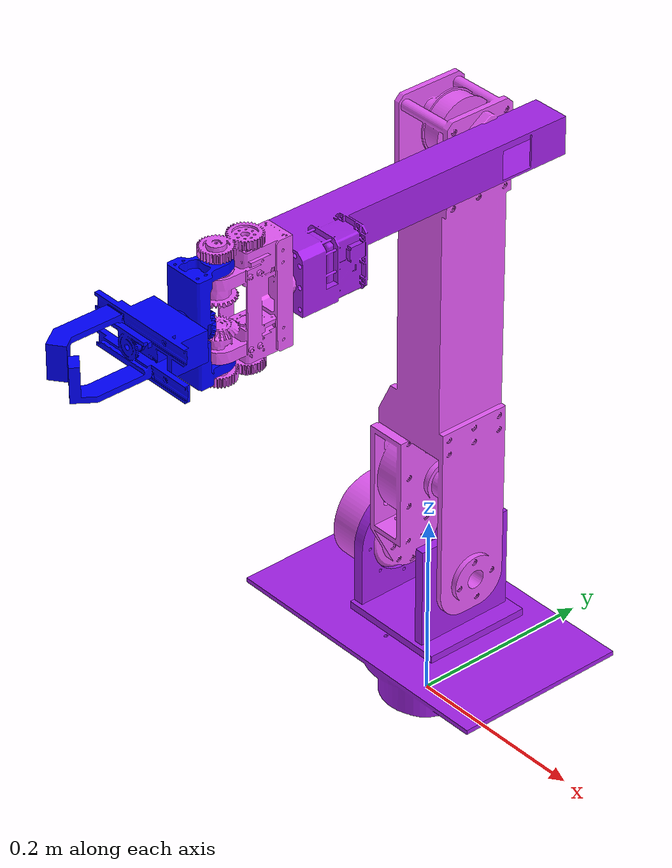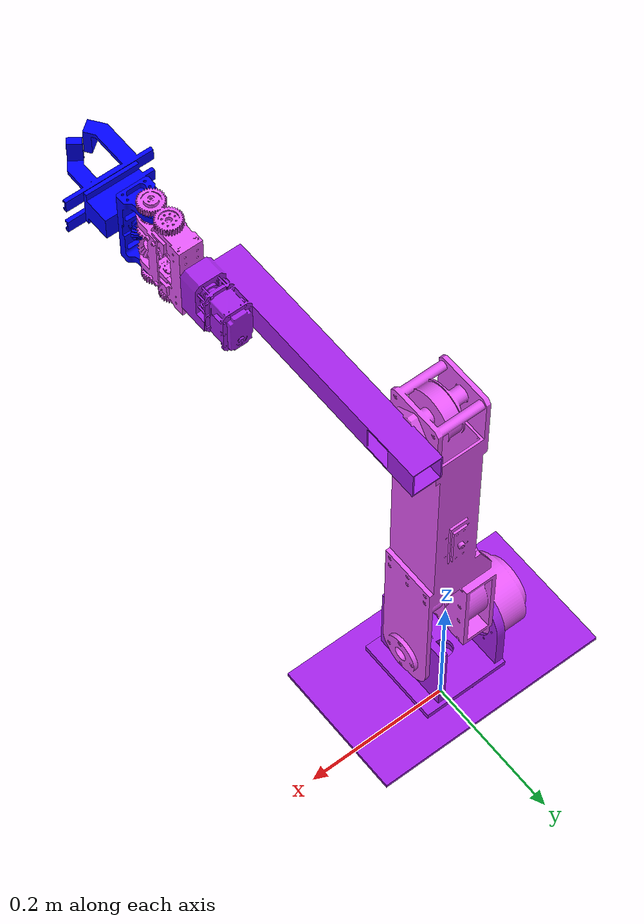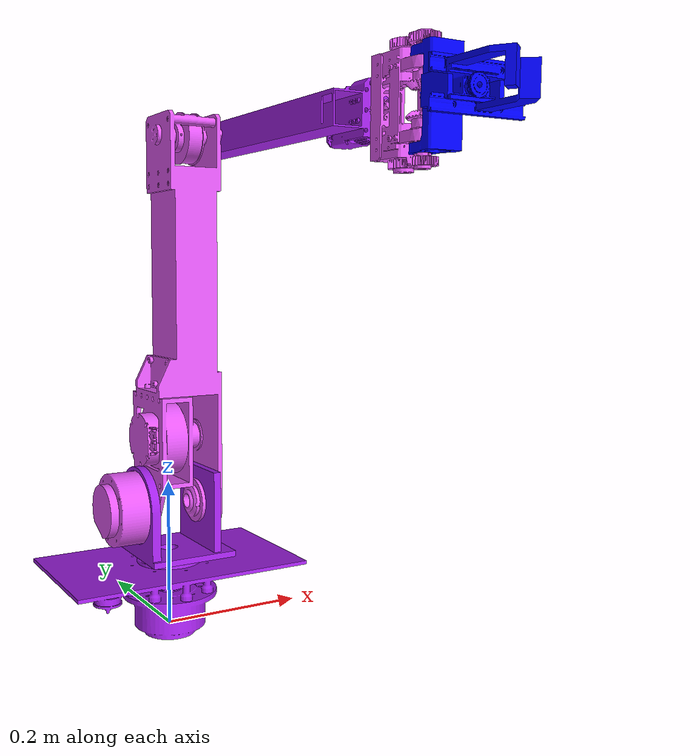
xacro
<?xml version="1.0" ?>
<!-- |    Author:       Klaudia Niedziałkowska                                         | -->
<robot name="six_dof_arm">

  <!-- Base link -->
  <link name="root_link">
    <visual>
      <geometry>
        <mesh filename="package://sirius_description/meshes/manipulators/6DOF/global_roll_assembly.STL" scale="0.001 0.001 0.001"/>
      </geometry>
      <origin xyz="0.0 0.0 0.1" rpy="0.0 0.0 0.0"/>
      <material name="purple">
        <color rgba="0.64 0.13 0.91 1.0"/>
      </material>
    </visual>
    <collision>
      <geometry>
          <mesh filename="package://sirius_description/meshes/manipulators/6DOF/global_roll_assembly.STL" scale="0.001 0.001 0.001"/>
      </geometry>
      <origin xyz="0.0 0.0 0.1" rpy="0.0 0.0 0.0"/>
    </collision>
    <inertial>
      <mass value="0.5"/>
      <inertia ixx="0.0042" ixy="0" ixz="0" iyy="0.0042" iyz="0" izz="0.0025"/>
    </inertial>
  </link>

  <!-- Joints and links -->

  <link name="link_1">
    <visual>
      <geometry>
        <mesh filename="package://sirius_description/meshes/manipulators/6DOF/base_assy.STL" scale="0.001 0.001 0.001"/>
      </geometry>
      <origin xyz="0.0 0.0 0.0" rpy="0.0 0.0 0.0"/>
      <material name="purple">
        <color rgba="0.64 0.13 0.91 1.0"/>
      </material>
    </visual>
    <collision>
      <geometry>
          <mesh filename="package://sirius_description/meshes/manipulators/6DOF/base_assy.STL" scale="0.001 0.001 0.001"/>
      </geometry>
      <origin xyz="0.0 0.0 0.0" rpy="0.0 0.0 0.0"/>
    </collision>
    <inertial>
      <mass value="0.8"/>
      <inertia ixx="0.0034" ixy="0" ixz="0" iyy="0.0034" iyz="0" izz="0.0016"/>
    </inertial>
  </link>

  <joint name="joint_1" type="revolute">
    <parent link="root_link"/>
    <child link="link_1"/>
    <axis xyz="0 0 1"/>
    <limit lower="-3.14" upper="3.14" effort="1000.0" velocity="0.5"/>
    <origin xyz="0 0 0.1" rpy="0 0 0"/>
  </joint>

  <link name="link_2">
    <visual>
      <geometry>
        <mesh filename="package://sirius_description/meshes/manipulators/6DOF/GP1.STL" scale="0.001 0.001 0.001"/>
      </geometry>
      <origin xyz="0 0 0" rpy="0.0 0.0 0.0"/>
      <material name="pink">
        <color rgba="0.902 0.349 0.971 1.0"/>
      </material>
    </visual>
    <collision>
      <geometry>
        <mesh filename="package://sirius_description/meshes/manipulators/6DOF/GP1.STL" scale="0.001 0.001 0.001"/>
      </geometry>
      <origin xyz="0 0 0" rpy="0.0 0.0 0.0"/>
    </collision>
    <inertial>
      <mass value="1.2"/>
      <inertia ixx="0.024" ixy="0" ixz="0" iyy="0.024" iyz="0" izz="0.0024"/>
    </inertial>
  </link>

  <joint name="joint_2" type="revolute">
    <parent link="link_1"/>
    <child link="link_2"/>
    <axis xyz="1 0 0"/>
    <limit lower="-1.58" upper="1.58" effort="1000.0" velocity="0.5"/>
    <origin xyz="0.02727 0.0 0.07" rpy="0 0 0"/>
  </joint>

  <link name="link_3">
    <visual>
      <geometry>
        <mesh filename="package://sirius_description/meshes/manipulators/6DOF/GP2.STL" scale="0.001 0.001 0.001"/>
      </geometry>
      <origin xyz="0 0 0" rpy="0.0 0.0 0.0"/>
      <material name="purple">
        <color rgba="0.64 0.13 0.91 1.0"/>
      </material>
    </visual>
    <collision>
      <geometry>
          <mesh filename="package://sirius_description/meshes/manipulators/6DOF/GP2.STL" scale="0.001 0.001 0.001"/>
      </geometry>
      <origin xyz="0 0 0" rpy="0.0 0.0 0.0"/>
    </collision>
    <inertial>
      <mass value="0.8"/>
      <inertia ixx="0.012" ixy="0" ixz="0" iyy="0.012" iyz="0" izz="0.0016"/>
    </inertial>
  </link>

  <joint name="joint_3" type="revolute">
    <parent link="link_2"/>
    <child link="link_3"/>
    <axis xyz="1 0 0"/>
    <limit lower="-1.58" upper="1.58" effort="1000.0" velocity="0.5"/>
    <origin xyz="0.04573 0 0.495" rpy="1.57079632679 0 0"/>
  </joint>

  <link name="link_4">
    <visual>
      <geometry>
        <mesh filename="package://sirius_description/meshes/manipulators/6DOF/wrist_diff_base.STL" scale="0.001 0.001 0.001"/>
      </geometry>
      <origin xyz="0.0 0.0 0.0" rpy="0.0 0.0 0.0"/>
      <material name="pink">
        <color rgba="0.902 0.349 0.971 1.0"/>
      </material>
    </visual>
    <collision>
      <geometry>
          <mesh filename="package://sirius_description/meshes/manipulators/6DOF/wrist_diff_base.STL" scale="0.001 0.001 0.001"/>
      </geometry>
      <origin xyz="0.0 0.0 0.0" rpy="0.0 0.0 0.0"/>
    </collision>
    <inertial>
      <mass value="0.3"/>
      <inertia ixx="0.0005" ixy="0" ixz="0" iyy="0.0005" iyz="0" izz="0.0003"/>
    </inertial>
  </link>

  <joint name="joint_4" type="revolute">
    <parent link="link_3"/>
    <child link="link_4"/>
    <axis xyz="0 0 1"/>
    <limit lower="-3.14" upper="3.14" effort="1000.0" velocity="0.5"/>
    <origin xyz="0.06 0 0.29" rpy="0 0 0"/>
  </joint>

  <link name="link_5">
    <visual>
      <geometry>
        <mesh filename="package://sirius_description/meshes/manipulators/6DOF/wrist_diff_output.STL" scale="0.001 0.001 0.001"/>
      </geometry>
      <origin xyz="0.0 0.0 0.0" rpy="0.0 0.0 0.0"/>
      <material name="purple">
        <color rgba="0.0 0.0 1.0 1.0"/>
      </material>
    </visual>
    <collision>
      <geometry>
        <mesh filename="package://sirius_description/meshes/manipulators/6DOF/wrist_diff_output.STL" scale="0.001 0.001 0.001"/>
      </geometry>
      <origin xyz="0.0 0.0 0.0" rpy="0.0 0.0 0.0"/>
    </collision>
    <inertial>
      <mass value="0.2"/>
      <inertia ixx="0.0007" ixy="0" ixz="0" iyy="0.0001" iyz="0" izz="0.0007"/>
    </inertial>
  </link>

  <joint name="joint_5" type="revolute">
    <parent link="link_4"/>
    <child link="link_5"/>
    <axis xyz="0 1 0"/>
    <limit lower="-1.55" upper="1.55" effort="1000.0" velocity="0.5"/>
    <origin xyz="0 0 0.07825 " rpy="0.0 0 0"/>

  </joint>

  <link name="tcp_connector">
    <visual>
      <geometry>
        <mesh filename="package://sirius_description/meshes/manipulators/6DOF/gripper.STL" scale="0.001 0.001 0.001"/>
      </geometry>
      <origin xyz="0.0 0.0 0.0" rpy="0.0 0.0 0.0"/>
      <material name="pink">
        <color rgba="0.0 0.0 1.0 1.0"/>
      </material>
    </visual>
    <collision>
      <geometry>
        <mesh filename="package://sirius_description/meshes/manipulators/6DOF/gripper.STL" scale="0.001 0.001 0.001"/>
      </geometry>
      <origin xyz="0.0 0.0 0.0" rpy="0.0 0.0 0.0"/>
    </collision>
    <inertial>
      <mass value="0.3"/>
      <inertia ixx="0.0003" ixy="0" ixz="0" iyy="0.0003" iyz="0" izz="0.0002"/>
    </inertial>
  </link>

  <joint name="joint_6" type="revolute">
    <origin xyz="0 0.0 0.04" rpy="0 0 0"/>
    <parent link="link_5"/>
    <child link="tcp_connector"/>
    <axis xyz="0 0 1"/>
    <limit lower="-3.14" upper="3.14" effort="1000.0" velocity="0.5"/>
  </joint>

</robot>
